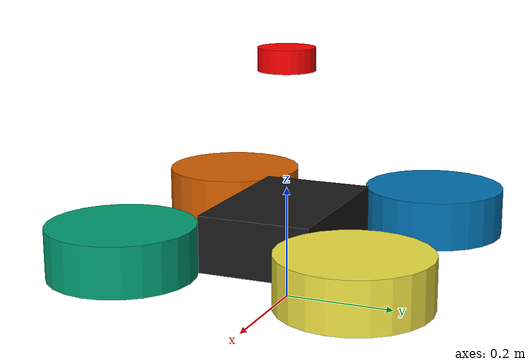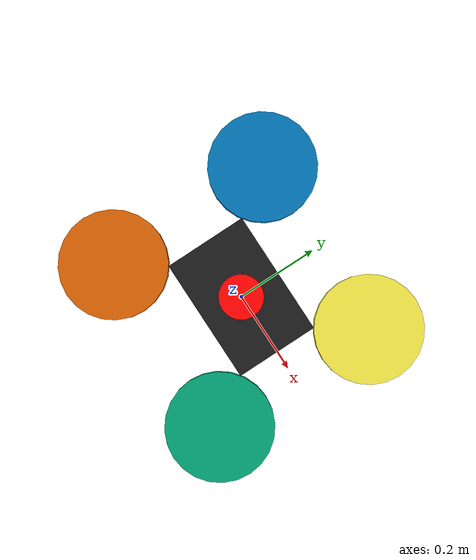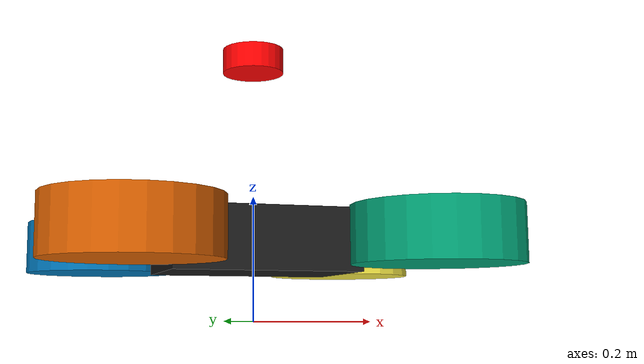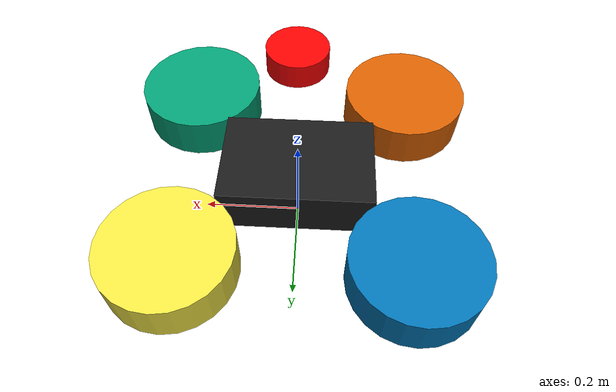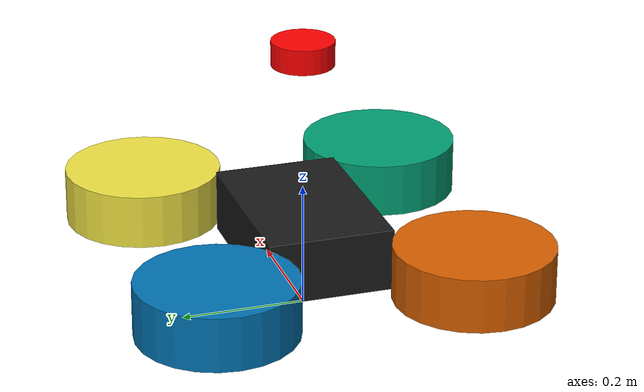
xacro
<robot xmlns:xacro="http://www.ros.org/wiki/xacro" name="test_bot">
    <material name="white">
        <color rgba="1 1 1 1" />
    </material>

    <material name="orange">
        <color rgba="1 0.3 0.1 1"/>
    </material>

    <material name="blue">
        <color rgba="0.2 0.2 1 1"/>
    </material>

    <material name="black">
        <color rgba="0 0 0 1"/>
    </material>

    <material name="red">
        <color rgba="1 0 0 1"/>
    </material>
<xacro:property name="wheel_height" value="0.087" />
<xacro:property name="wheel_mass" value="6.5" /> <!-- in kg-->
<xacro:property name="PI" value="3.1415926535897931" />
<xacro:property name="wheel_offset_x" value="0.2225" />    <!-- x,y,z in translation from base_link to the center of the wheel -->
<xacro:property name="wheel_offset_y" value="0.2045" />
<xacro:property name="wheel_offset_z" value="0.0" />
<xacro:property name="wheel_radius" value="0.127" />
<xacro:property name="update_rate" value="20" />

  <xacro:macro name="solid_cylinder_inertia" params="m r h">
    <inertia  ixx="${m*(3*r*r+h*h)/12}" ixy = "0" ixz = "0"
              iyy="${m*(3*r*r+h*h)/12}" iyz = "0"
              izz="${m*r*r/2}"
     />
  </xacro:macro>
  <xacro:macro name="omni_wheel" params="prefix parent *origin reflect wheel_radius update_rate:=20">
    <joint name="${prefix}_wheel_joint" type="continuous">
      <parent link="${parent}"/>
      <child link="${prefix}_wheel_link"/>
      <xacro:insert_block name="origin" />
      <axis xyz="0 1 0" rpy="0 0 0" />
      <limit effort="100" velocity="100"/>
      <joint_properties damping="0.0" friction="0.0"/>
    </joint>

    <link name="${prefix}_wheel_link">
      <visual>
        <origin xyz="0 0 0" rpy="0 0 0" />
        <geometry>
            <cylinder length="${wheel_height}" radius="${wheel_radius}" />
        </geometry>
      </visual>

      <collision>
            <origin xyz="0 0 0" rpy="0 0 0" />
        <geometry>
            <cylinder length="${wheel_height}" radius="${wheel_radius}" />
        </geometry>
      </collision>

      <inertial>
        <mass value="${wheel_mass}" />
        <origin xyz="0 0 0" />
        <xacro:solid_cylinder_inertia  m="${wheel_mass}" r="${wheel_radius}" h="${wheel_height}" />
      </inertial>
    </link>

    <!-- Transmission is important to link the joints and the controller (see robot_control/config/robot_control.yaml)-->
    <transmission name="${prefix}_wheel_joint_trans">
      <type>transmission_interface/SimpleTransmission</type>
      <joint name="${prefix}_wheel_joint" >
        <hardwareInterface>hardware_interface/VelocityJointInterface</hardwareInterface>
      </joint>
      <actuator name="${prefix}_wheel_joint_motor">
         <mechanicalReduction>1</mechanicalReduction>
      </actuator>
    </transmission>

    <gazebo reference="${prefix}_wheel_link">
    <mu1 value="1.0"/>
    <mu2 value="1.0"/>
    <kp value="10000000.0" />
    <kd value="1.0" />
    <fdir1 value="1 0 0"/>
        <turnGravityOff>false</turnGravityOff>
    </gazebo>
  </xacro:macro>
<xacro:macro name="lidar" params="parent *origin laser_name">

    <joint name="${laser_name}_laser_joint" type="fixed">
        <parent link="${parent}" />
        <child link="${laser_name}_laser_frame" />
        <xacro:insert_block name="origin" />
    </joint>

    <link name="${laser_name}_laser_frame">
        <visual>
            <geometry>
                <cylinder radius="0.05" length="0.04" />
            </geometry>
            <material name="red" />
        </visual>
        <collision>
            <geometry>
                <cylinder radius="0.05" length="0.04" />
            </geometry>
        </collision>
        <inertial>
            <origin xyz="0 0 0" rpy="0 0 0" />
            <mass value="0.1" />
            <xacro:solid_cylinder_inertia m="0.1" h="0.04" r="0.05" />
        </inertial>

    </link>

    <gazebo reference="${laser_name}_laser_frame">
        <material>Gazebo/Red</material>

        <sensor name="laser" type="ray">
            <pose> 0 0 0 0 0 0 </pose>
            <visualize>true</visualize>
            <update_rate>10</update_rate>
            <ray>
                <scan>
                    <horizontal>
                        <samples>360</samples>
                        <min_angle>-3.14</min_angle>
                        <max_angle>3.14</max_angle>
                    </horizontal>
                </scan>
                <range>
                    <min>0.3</min>
                    <max>10.0</max>
                </range>
            </ray>
            <plugin name="laser_controller" filename="libgazebo_ros_ray_sensor.so">
                <ros>
                    <argument>--ros-args --remap ~/out:=scan</argument>
                </ros>
                <output_type>sensor_msgs/LaserScan</output_type>
                <frame_name>${laser_name}_laser_frame</frame_name>
            </plugin>
        </sensor>
    </gazebo>

    </xacro:macro>
    <xacro:macro name="robot_body_geometry">
    <origin xyz="0 0 0" rpy="0 0 0" />
    <geometry>
        <box size="0.30 0.20 0.10"/>
    </geometry>
    </xacro:macro>
    <xacro:macro name="robot_body" params="wheel_radius">
        <xacro:macro name="omni_steering" params="">
    <gazebo>
        <plugin name="psuedo_mecanum" filename="libgazebo_ros_planar_move.so">
        <commandTopic>cmd_vel</commandTopic>
        <odometryTopic>odom</odometryTopic>
        <odometryFrame>odom</odometryFrame>
        <odometryRate>50.0</odometryRate>
        <robotBaseFrame>base_footprint</robotBaseFrame>
        <publishTF>true</publishTF>
        </plugin>
    </gazebo>
    </xacro:macro>
    <xacro:macro name="loop" params="joints:=^ *element">
    <xacro:if value="${joints}">
        <xacro:property name="joint" value="${joints.pop(0)}"/>
        <joint_name>$(joint)</joint_name>
        <xacro:loop />
    </xacro:if>
    </xacro:macro>
    <xacro:macro name="ros_joints_state_publisher" params="joints update_rate:=20">
    <gazebo>
        <plugin name="gazebo_ros_joint_state_publisher"
        filename="libgazebo_ros_joint_state_publisher.so">
        <update_rate>${update_rate}</update_rate>
        <xacro:loop joints="${joints}" />
        </plugin>
    </gazebo>
    </xacro:macro>
    <xacro:macro name="ros_joint_state_publisher" params="joint update_rate:=20">
    <gazebo>
        <plugin name="gazebo_ros_joint_state_publisher"
        filename="libgazebo_ros_joint_state_publisher.so">
        <update_rate>${update_rate}</update_rate>
        <joint_name>${joint}</joint_name>
        </plugin>
    </gazebo>
    </xacro:macro>
    <xacro:macro name="ros_joint_pose_trajectory">
    <gazebo>
        <plugin name="gazebo_ros_joint_pose_trajectory"
        filename="libgazebo_ros_joint_pose_trajectory.so">
        <update_rate>2</update_rate>
        </plugin>
    </gazebo>
    </xacro:macro>
    <!-- Robot mechanical and motor parameters -->

    <!-- BASE FOOTPRINT -->
    <link name="base_footprint">
    <visual>
        <origin xyz="0 0 0" rpy="0 0 0" />
        <geometry>
        <box size="0.001 0.001 0.001" />
        </geometry>
    </visual>
    </link>

    <joint name="robot_footprint_joint" type="fixed">
        <parent link="base_footprint"/>
        <child link="robot_body_link" />
        <origin xyz="0 0 ${wheel_radius}" rpy="0 0 0" />
    </joint>

    <!-- BASE_LINK -->
    <link name="robot_body_link">
    <inertial>
        <mass value="125.0" />
        <origin xyz="0 0 0" />
        <inertia  ixx="1.391" ixy="0.004"  ixz="0.0"  iyy="6.853"  iyz="0.0"  izz="6.125" />
    </inertial>

    <visual>
        <origin xyz="0 0 0" rpy="0 0 0" />
        <xacro:robot_body_geometry />
        <material name="darkgrey">
            <color rgba="0.1 0.1 0.1 1"/>
        </material>
    </visual>

    <collision>
        <origin xyz="0 0 0" rpy="0 0 0 " />
        <xacro:robot_body_geometry />
    </collision>

    </link>

    </xacro:macro>

    <xacro:robot_body wheel_radius="${wheel_radius}" />
    <xacro:omni_wheel
        prefix="front_right"
        parent="robot_body_link"
        reflect="2"
        wheel_radius="${wheel_radius}" >
        <origin xyz="${wheel_offset_x} -${wheel_offset_y} ${wheel_offset_z}" rpy="0 0 0" />
    </xacro:omni_wheel>

    <xacro:omni_wheel
        prefix="front_left"
        parent="robot_body_link"
        reflect="1"
        wheel_radius="${wheel_radius}">
        <origin xyz="${wheel_offset_x} ${wheel_offset_y} ${wheel_offset_z}" rpy="0 0 0" />
    </xacro:omni_wheel>

    <xacro:omni_wheel
        prefix="back_left"
        parent="robot_body_link"
        reflect="1"
        wheel_radius="${wheel_radius}">
        <origin xyz="-${wheel_offset_x} ${wheel_offset_y} ${wheel_offset_z}" rpy="0 0 0" />
    </xacro:omni_wheel>

    <xacro:omni_wheel
        prefix="back_right"
        parent="robot_body_link"
        reflect="2"
        wheel_radius="${wheel_radius}">
        <origin xyz="-${wheel_offset_x} -${wheel_offset_y} ${wheel_offset_z}" rpy="0 0 0" />
    </xacro:omni_wheel>

    <xacro:lidar parent="robot_body_link" laser_name="1">
        <origin xyz="0 0 0.3" rpy="0 0 0" />
    </xacro:lidar>

</robot>
